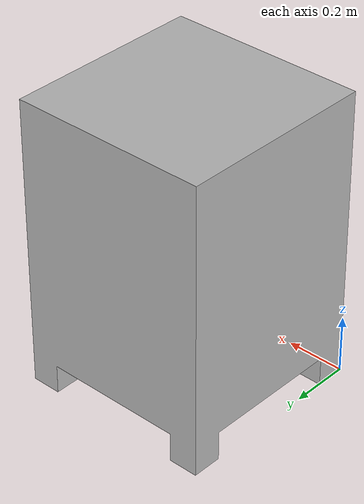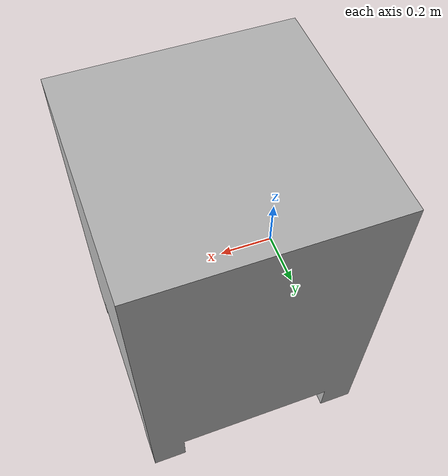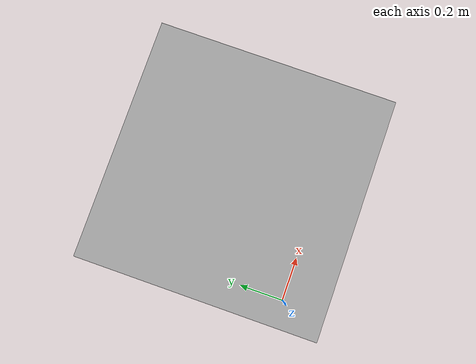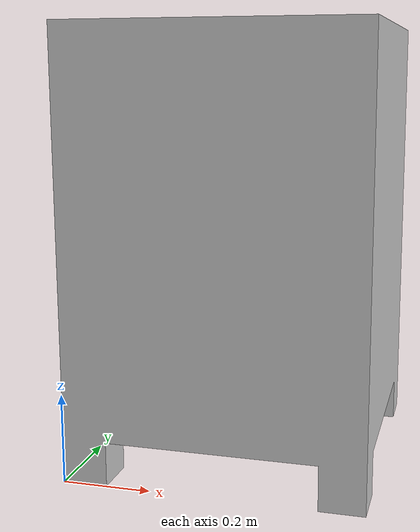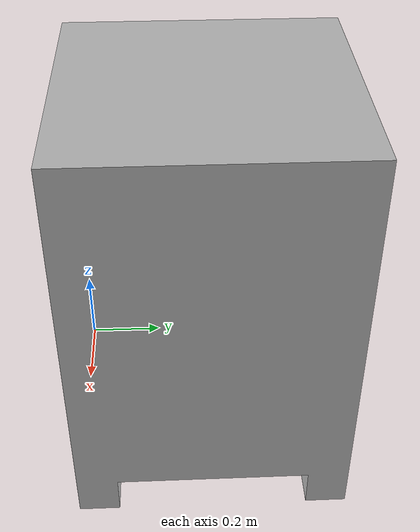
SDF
<?xml version="1.0" ?>
<sdf version="1.6">
  <model name="kutija1">
    <static>true</static>
    <link name="base_link">

      <visual name="visual">
        <geometry>
          <mesh>
            <uri>model://kutija2/meshes/crta_kutija2.STL</uri>
            <scale>0.001 0.001 0.001</scale>
          </mesh>
        </geometry>
      </visual>

      <collision name="collision">
       <pose>0.335 0.335 0.5 0 0 0</pose>
        <geometry>
         <box>
          <size>0.67 0.67 1</size> <!-- Prilagodi veličini stolca -->
         </box>
        </geometry>
       </collision>

    </link>
  </model>
</sdf>
